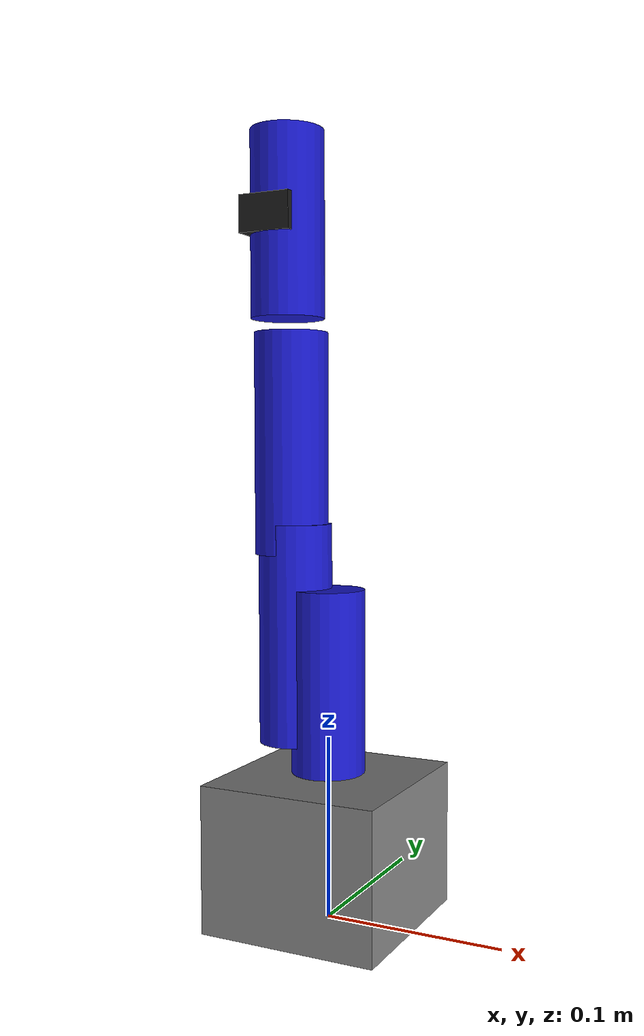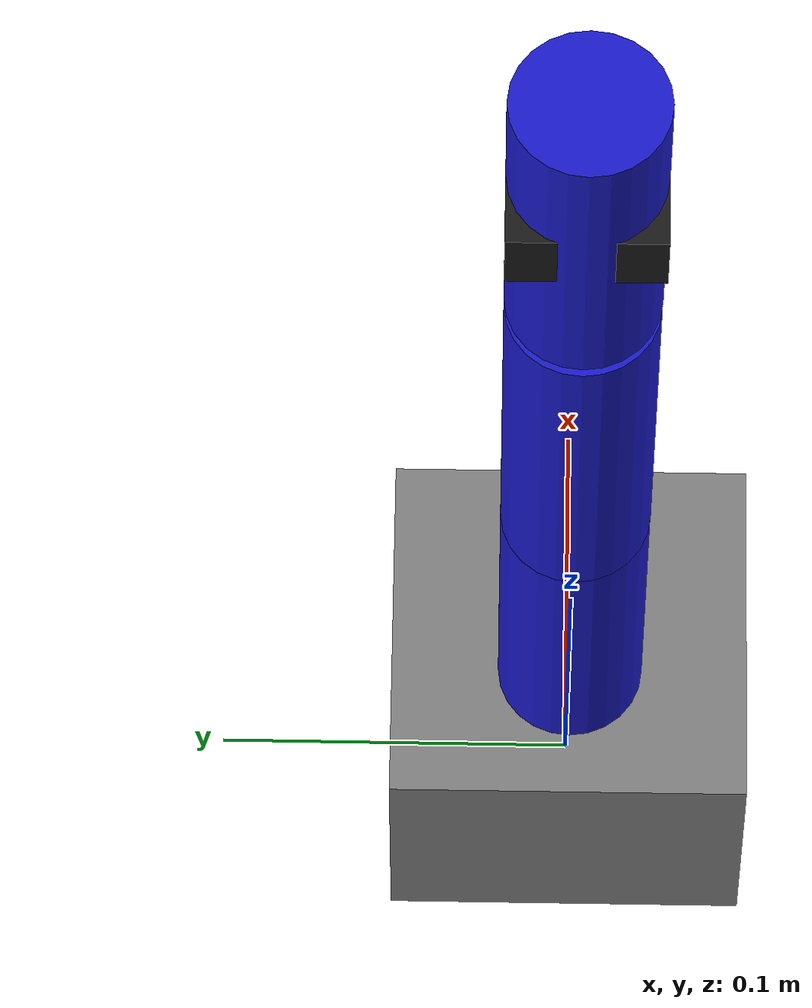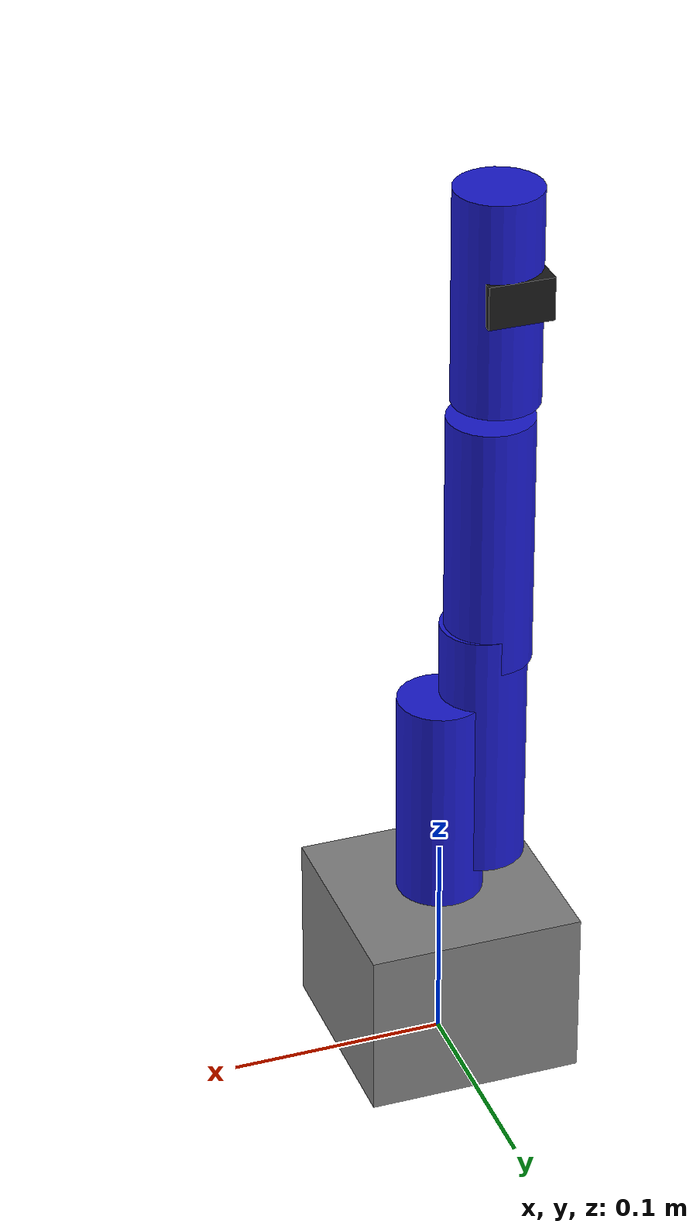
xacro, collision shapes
<?xml version="1.0"?>
<robot xmlns:xacro="http://www.ros.org/wiki/xacro" name="roomiearm">

    <xacro:arg name="robot_name" default="roomiearm"/>
    <xacro:arg name="add_world" default="true"/>
    <xacro:arg name="base_link" default="base_link"/>
    <xacro:arg name="base_type" default="g_shape"/>
    <xacro:arg name="use_gazebo" default="false"/>

    <xacro:if value="$(arg add_world)">
      <link name="world"/>
      <joint name="virtual_joint" type="fixed">
          <parent link="world"/>
          <child link="$(arg base_link)"/>
          <origin xyz="0 0 0" rpy="0 0 0"/>
      </joint>
    </xacro:if>

    <xacro:property name="current_base" value="$(arg base_type)"/>
    <xacro:if value="${current_base == 'g_shape'}">
        <xacro:include filename="$(find roomiearm_description)/urdf/mech/base.urdf.xacro"/>
        <xacro:base base_link="$(arg base_link)"/>
    </xacro:if>

    <xacro:include filename="$(find roomiearm_description)/urdf/mech/arm.urdf.xacro"/>
    <xacro:roomiearm_arm
      base_link="$(arg base_link)">
    </xacro:roomiearm_arm>

    <xacro:include filename="$(find roomiearm_description)/urdf/control/gazebo_sim_ros2_control.urdf.xacro" />
    <xacro:load_gazebo_sim_ros2_control_plugin
      use_gazebo="$(arg use_gazebo)"/>

    <xacro:include filename="$(find roomiearm_description)/urdf/control/roomiearm_ros2_control.urdf.xacro" />
    <xacro:roomiearm_ros2_control
      use_gazebo="$(arg use_gazebo)"/>

    <xacro:include filename="$(find roomiearm_description)/urdf/sensors/camera.urdf.xacro"/>

</robot>

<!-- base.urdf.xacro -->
<robot xmlns:xacro="http://wiki.ros.org/xacro">
    <xacro:macro name="base" params="base_link">
        <link name="base_link">
            <inertial>
                <origin xyz="0 0 0.04" rpy="0 0 0"/>
                <mass value="0.5"/>
                <inertia
                    ixx="0.000683" ixy="0.0" ixz="0.0"
                    iyy="0.000683" iyz="0.0"
                    izz="0.000833"/>
            </inertial>
            <visual>
                <geometry>
                    <mesh filename="file://$(find roomiearm_description)/meshes/base_link.stl"/>
                </geometry>
                <material name="grey"/>
            </visual>
            <collision>
                <geometry>
                    <box size="0.1 0.1 0.08"/>
                </geometry>
                <origin xyz="0 0 0.04" rpy="0 0 0"/>
            </collision>
        </link>

        <gazebo reference="${base_link}">
            <visual>
                <material>
                    <ambient>0.5 0.5 0.5 1</ambient>
                    <diffuse>0.5 0.5 0.5 1</diffuse>
                    <specular>0.5 0.5 0.5 1</specular>
                </material>
            </visual>
        </gazebo>
    </xacro:macro>
</robot>

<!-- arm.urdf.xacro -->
<robot xmlns:xacro="http://www.ros.org/wiki/xacro">

  <!-- Properties -->
  <xacro:arg name="base_link" default="base_link"/>
  <xacro:property name="mesh_prefix" value="package://roomiearm_description/meshes"/>
  <xacro:property name="limit_lower" value="${-pi/2}"/>
  <xacro:property name="limit_upper" value="${pi/2}"/>
  <xacro:property name="limit_effort" value="11"/>
  <xacro:property name="limit_velocity" value="7.48"/>

  <!-- Mass Properties -->
  <xacro:property name="link_1_mass" value="0.2"/>
  <xacro:property name="link_2_mass" value="0.2"/>
  <xacro:property name="link_3_mass" value="0.2"/>
  <xacro:property name="link_4_mass" value="0.1"/>
  <xacro:property name="ee_link_mass" value="0.01"/>
  <xacro:property name="camera_mount_mass" value="0.05"/>

  <!-- Inertial Macro -->
  <xacro:macro name="link_inertial" params="mass ixx iyy izz origin_xyz:='0 0 0' origin_rpy:='0 0 0'">
    <inertial>
      <origin xyz="${origin_xyz}" rpy="${origin_rpy}"/>
      <mass value="${mass}"/>
      <inertia
        ixx="${ixx}" ixy="0.0" ixz="0.0"
        iyy="${iyy}" iyz="0.0"
        izz="${izz}"/>
    </inertial>
  </xacro:macro>

  <!-- Materials -->
  <material name="grey">
    <color rgba="0.5 0.5 0.5 1.0"/>
  </material>
  <material name="blue">
    <color rgba="0.1 0.1 0.8 1.0"/>
  </material>
  <material name="black">
    <color rgba="0.1 0.1 0.1 1.0"/>
  </material>

  <xacro:macro name="roomiearm_arm"  params="base_link" >

    <!-- ==================== LINKS ======================= -->

    <!-- Link 1 -->
    <link name="link_1">
      <xacro:link_inertial mass="${link_1_mass}" origin_xyz="0 0 0.05" ixx="0.000187" iyy="0.000187" izz="0.00004"/>
      <visual>
        <geometry><mesh filename="${mesh_prefix}/link_1.stl"/></geometry>
        <material name="blue"/>
      </visual>
      <collision>
        <geometry><cylinder radius="0.02" length="0.1"/></geometry>
        <origin xyz="0 0 0.05" rpy="0 0 0"/>
      </collision>
    </link>

    <!-- Link 2 -->
    <link name="link_2">
      <xacro:link_inertial mass="${link_2_mass}" origin_xyz="0 0 0.06" ixx="0.00026" iyy="0.00026" izz="0.00004"/>
      <visual>
        <geometry><mesh filename="${mesh_prefix}/link_2.stl"/></geometry>
        <material name="blue"/>
      </visual>
      <collision>
        <geometry><cylinder radius="0.02" length="0.12"/></geometry>
        <origin xyz="0 0 0.06" rpy="0 0 0"/>
      </collision>
    </link>

    <!-- Link 3 -->
    <link name="link_3">
      <xacro:link_inertial mass="${link_3_mass}" origin_xyz="0 0 0.06" ixx="0.00026" iyy="0.00026" izz="0.00004"/>
      <visual>
        <geometry><mesh filename="${mesh_prefix}/link_3.stl"/></geometry>
        <material name="blue"/>
      </visual>
      <collision>
        <geometry><cylinder radius="0.02" length="0.12"/></geometry>
        <origin xyz="0 0 0.06" rpy="0 0 0"/>
      </collision>
    </link>

    <!-- Link 4 -->
    <link name="link_4">
      <xacro:link_inertial mass="${link_4_mass}" origin_xyz="0 0 0.05" ixx="0.000093" iyy="0.000093" izz="0.00002"/>
      <visual>
        <geometry><mesh filename="${mesh_prefix}/link_4.stl"/></geometry>
        <material name="blue"/>
      </visual>
      <collision>
        <geometry><cylinder radius="0.02" length="0.1"/></geometry>
        <origin xyz="0 0 0.05" rpy="0 0 0"/>
      </collision>
    </link>

    <!-- End Effector Link -->
    <link name="ee_link">
      <xacro:link_inertial mass="${ee_link_mass}" origin_xyz="0 0 0" ixx="1e-6" iyy="1e-6" izz="1e-6"/>
    </link>

    <!-- Camera Link -->
    <link name='camera_mount'>
      <xacro:link_inertial mass="${camera_mount_mass}" origin_xyz="0 0 0.015" ixx="0.0000104" iyy="0.0000054" izz="0.0000083"/>
      <visual>
        <geometry><mesh filename="${mesh_prefix}/camera.stl"/></geometry>
        <material name="black"/>
        <origin xyz="0 0 0" rpy="0 ${pi/2} 0"/>
      </visual>
      <collision>
        <geometry><box size="0.02 0.04 0.03"/></geometry>
      </collision>
    </link>

    <!-- Camera Optical Frame -->
    <link name="camera_link"/>

    <!-- ==================== JOINTS ======================= -->

    <!-- Joint 1 -->
    <joint name="joint_1" type="revolute">
      <parent link="base_link"/>
      <child link="link_1"/>
      <origin xyz="0 0 0.0814" rpy="0 0 0"/>
      <axis xyz="0 0 1"/>
      <limit lower="${limit_lower}" upper="${limit_upper}" effort="${limit_effort}" velocity="${limit_velocity}"/>
      <dynamics damping="0.7" friction="0.1"/>
    </joint>

    <!-- Joint 2 -->
    <joint name="joint_2" type="revolute">
      <parent link="link_1"/>
      <child link="link_2"/>
      <origin xyz="-0.02 0 0.015" rpy="0 0 0"/>
      <axis xyz="0 -1 0"/>
      <limit lower="${limit_lower}" upper="${limit_upper}" effort="${limit_effort}" velocity="${limit_velocity}"/>
      <dynamics damping="0.7" friction="0.1"/>
    </joint>

    <!-- Joint 3 -->
    <joint name="joint_3" type="revolute">
      <parent link="link_2"/>
      <child link="link_3"/>
      <origin xyz="-0.0021 0 0.1035" rpy="0 0 0"/>
      <axis xyz="0 1 0"/>
      <limit lower="${limit_lower}" upper="${limit_upper}" effort="${limit_effort}" velocity="${limit_velocity}"/>
      <dynamics damping="0.7" friction="0.1"/>
    </joint>

    <!-- Joint 4 -->
    <joint name="joint_4" type="revolute">
      <parent link="link_3"/>
      <child link="link_4"/>
      <origin xyz="-0.002 0 0.1275" rpy="0 0 0"/>
      <axis xyz="0 -1 0"/>
      <limit lower="${limit_lower}" upper="${limit_upper}" effort="${limit_effort}" velocity="${limit_velocity}"/>
      <dynamics damping="0.7" friction="0.1"/>
    </joint>

    <!-- End Effector Joint -->
    <joint name="ee_joint" type="fixed">
      <parent link="link_4"/>
      <child link="ee_link"/>
      <origin xyz="0.01 0 0.092" rpy="0 0 0"/>
    </joint>

  </xacro:macro>

  <!-- Camera Joint -->
  <joint name='camera_joint' type='fixed'>
    <parent link='link_4'/>
    <child link='camera_mount'/>
    <origin xyz="-0.0035 0 0.054" rpy="0 -${pi/2} 0"/>
  </joint>

  <!-- Camera Optical Joint -->
  <joint name="camera_optical_joint" type="fixed">
    <parent link="camera_mount"/>
    <child link="camera_link"/>
    <origin xyz="0.01 0 0" rpy="-${pi/2} 0 -${pi/2}"/>
  </joint>

</robot>
